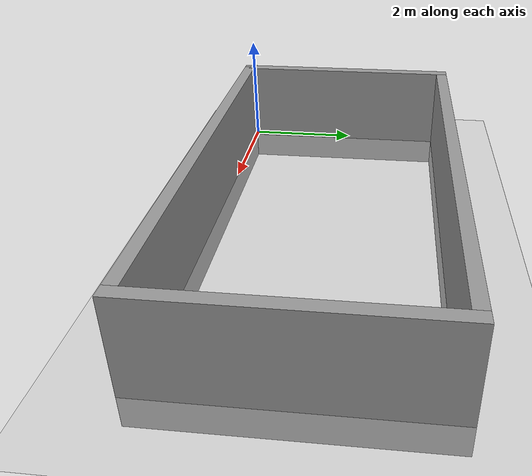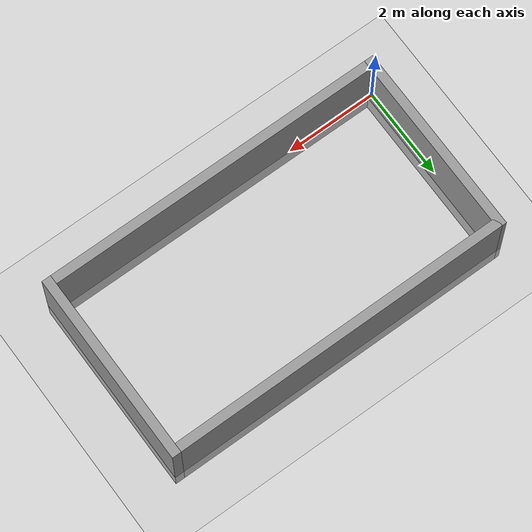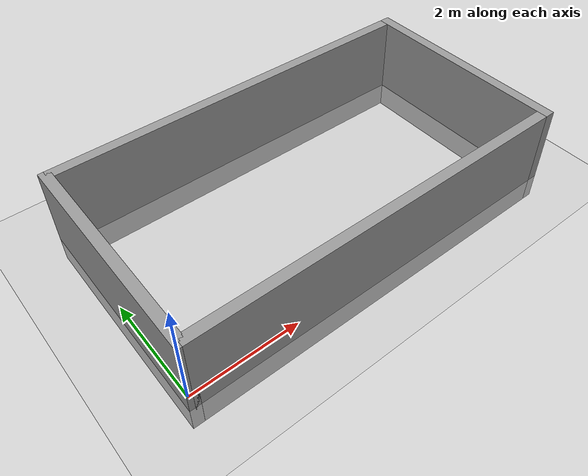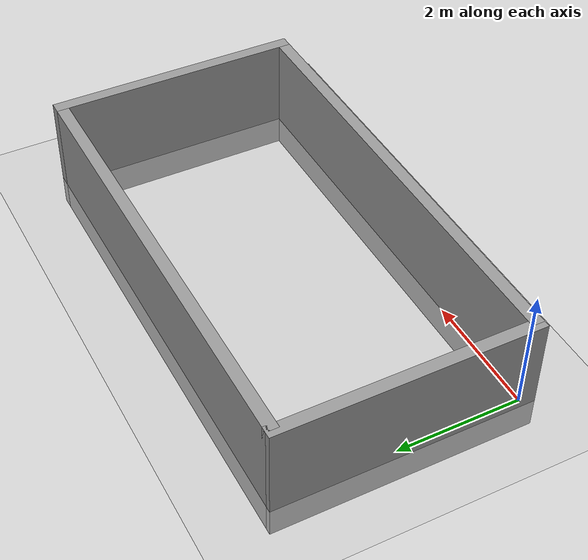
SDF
<sdf version="1.4">
 <world name="default">
  <light name="sun" type="directional">
   <pose>0 0 10 0 -0 0</pose>
   <diffuse>0.8 0.8 0.8 1</diffuse>
   <specular>0.2 0.2 0.2 1</specular>
   <attenuation>
    <range>1000</range>
    <constant>0.9</constant>
    <linear>0.01</linear>
    <quadratic>0.001</quadratic>
   </attenuation>
   <direction>-0.5 0.1 -0.9</direction>
  </light>
  <model name="ArenaWalls">
   <link name="Wall_0">
    <collision name="Wall_0_Collision">
     <geometry><box><size>.2 4.18 2</size></box></geometry>
     <pose>0 1.89 .5 0 -0 0</pose>
    </collision>
    <visual name="Wall_0_Visual">
     <pose>0 1.89 .5 0 -0 0</pose>
     <geometry><box><size>.2 4.18 2</size></box></geometry>
     <material>
      <script><uri>file://media/materials/scripts/gazebo.material</uri><name>Gazebo/Grey</name></script>
     </material>
    </visual>
    <velocity_decay><linear>0</linear><angular>0</angular></velocity_decay>
   </link>
   <link name="Wall_1">
    <collision name="Wall_1_Collision">
     <geometry><box><size>7.38 0.2 2</size></box></geometry>
     <pose>0 0 0.5 0 -0 0</pose>
    </collision>
    <visual name="Wall_1_Visual">
     <pose>0 0 0.5 0 -0 0</pose>
     <geometry><box><size>7.38 0.2 2</size></box></geometry>
     <material>
      <script><uri>file://media/materials/scripts/gazebo.material</uri><name>Gazebo/Grey</name></script>
     </material>
    </visual>
    <velocity_decay><linear>0</linear><angular>0</angular></velocity_decay>
    <pose>3.69 -0.1 0 0 -0 0</pose>
   </link>
   <link name="Wall_2">
    <collision name="Wall_2_Collision">
     <geometry><box><size>4.18 0.2 2</size></box></geometry>
     <pose>0 0 0.5 0 -0 0</pose>
    </collision>
    <visual name="Wall_2_Visual">
     <pose>0 0 0.5 0 -0 0</pose>
     <geometry><box><size>4.18 0.2 2</size></box></geometry>
     <material>
      <script><uri>file://media/materials/scripts/gazebo.material</uri><name>Gazebo/Grey</name></script>
     </material>
    </visual>
    <velocity_decay><linear>0</linear><angular>0</angular></velocity_decay>
    <pose>7.48 1.89 0 0 -0 1.5708</pose>
   </link>
   <link name="Wall_3">
    <collision name="Wall_3_Collision">
     <geometry><box><size>7.38 0.2 2</size></box></geometry>
     <pose>0 0 0.5 0 -0 0</pose>
    </collision>
    <visual name="Wall_3_Visual">
     <pose>0 0 0.5 0 -0 0</pose>
     <geometry><box><size>7.38 0.2 2</size></box></geometry>
     <material>
      <script><uri>file://media/materials/scripts/gazebo.material</uri><name>Gazebo/Grey</name></script>
     </material>
    </visual>
    <velocity_decay><linear>0</linear><angular>0</angular></velocity_decay>
    <pose>3.69 3.88 0 0 -0 0</pose>
   </link>
   <static>1</static>
  </model>
  <model name="ground_plane">
   <static>1</static>
   <link name="link">
    <collision name="collision">
     <geometry><plane><normal>0 0 1</normal><size>100 100</size></plane></geometry>
     <surface><friction><ode><mu>100</mu><mu2>50</mu2></ode></friction></surface>
    </collision>
    <visual name="visual">
     <cast_shadows>0</cast_shadows>
     <geometry><plane><normal>0 0 1</normal><size>100 100</size></plane></geometry>
     <material>
      <script><uri>file://media/materials/scripts/gazebo.material</uri><name>Gazebo/Grey</name></script>
     </material>
    </visual>
    <velocity_decay><linear>0</linear><angular>0</angular></velocity_decay>
   </link>
  </model>
  <physics type="ode">
   <max_step_size>0.001</max_step_size>
   <real_time_factor>1</real_time_factor>
   <real_time_update_rate>1000</real_time_update_rate>
   <gravity>0 0 -9.8</gravity>
  </physics>
  <scene><ambient>0.4 0.4 0.4 1</ambient><background>0.7 0.7 0.7 1</background><shadows>1</shadows></scene>
 </world>
</sdf>
